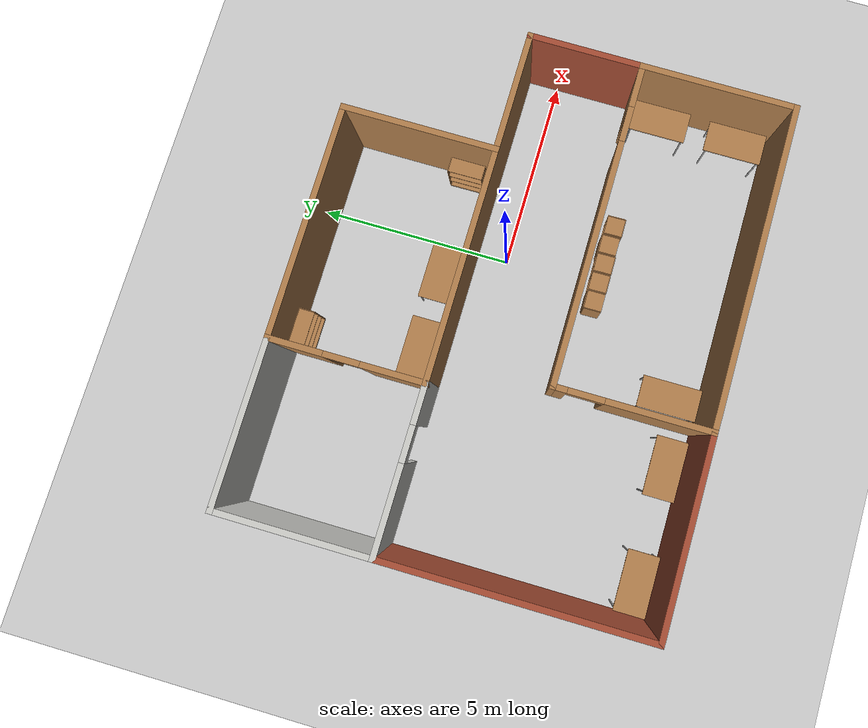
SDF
<sdf version="1.6">
 <world name="default">
  <light name="sun" type="directional">
   <pose>0 0 10 0 -0 0</pose>
   <diffuse>0.8 0.8 0.8 1</diffuse>
   <specular>0.2 0.2 0.2 1</specular>
   <attenuation>
    <range>1000</range>
    <constant>0.9</constant>
    <linear>0.01</linear>
    <quadratic>0.001</quadratic>
   </attenuation>
   <direction>-0.5 0.1 -0.9</direction>
  </light>
  <model name="ground_plane">
   <static>1</static>
   <link name="link">
    <collision name="collision">
     <geometry><plane><normal>0 0 1</normal><size>100 100</size></plane></geometry>
     <surface><friction><ode><mu>100</mu><mu2>50</mu2></ode></friction></surface>
    </collision>
    <visual name="visual">
     <cast_shadows>0</cast_shadows>
     <geometry><plane><normal>0 0 1</normal><size>100 100</size></plane></geometry>
     <material>
      <script><uri>file://media/materials/scripts/gazebo.material</uri><name>Gazebo/Grey</name></script>
     </material>
    </visual>
   </link>
  </model>
  <gravity>0 0 -9.8</gravity>
  <magnetic_field>6e-06 2.3e-05 -4.2e-05</magnetic_field>
  <atmosphere type="adiabatic"/>
  <physics name="default_physics" default="0" type="ode">
   <max_step_size>0.001</max_step_size>
   <real_time_factor>1</real_time_factor>
   <real_time_update_rate>1000</real_time_update_rate>
  </physics>
  <scene><ambient>0.4 0.4 0.4 1</ambient><background>0.7 0.7 0.7 1</background><shadows>1</shadows></scene>
  <spherical_coordinates>
   <surface_model>EARTH_WGS84</surface_model>
   <latitude_deg>0</latitude_deg>
   <longitude_deg>0</longitude_deg>
   <elevation>0</elevation>
   <heading_deg>0</heading_deg>
  </spherical_coordinates>
  <model name="office">
   <pose>-1.375 -0.575 0 0 -0 0</pose>
   <link name="Wall_0">
    <pose>2.375 -1.425 0 0 -0 0</pose>
    <visual name="Wall_0_Visual_0">
     <pose>-0.976421 0 1.25 0 -0 0</pose>
     <geometry><box><size>6.19716 0.15 2.5</size></box></geometry>
     <material>
      <script><uri>file://media/materials/scripts/gazebo.material</uri><name>Gazebo/Wood</name></script>
      <ambient>1 1 1 1</ambient>
     </material>
     <meta><layer>0</layer></meta>
    </visual>
    <collision name="Wall_0_Collision_0">
     <geometry><box><size>6.19716 0.15 2.5</size></box></geometry>
     <pose>-0.976421 0 1.25 0 -0 0</pose>
    </collision>
    <visual name="Wall_0_Visual_1">
     <pose>3.54858 0 1.25 0 -0 0</pose>
     <geometry><box><size>1.05284 0.15 2.5</size></box></geometry>
     <material>
      <script><uri>file://media/materials/scripts/gazebo.material</uri><name>Gazebo/Wood</name></script>
      <ambient>1 1 1 1</ambient>
     </material>
     <meta><layer>0</layer></meta>
    </visual>
    <collision name="Wall_0_Collision_1">
     <geometry><box><size>1.05284 0.15 2.5</size></box></geometry>
     <pose>3.54858 0 1.25 0 -0 0</pose>
    </collision>
    <visual name="Wall_0_Visual_2">
     <pose>2.57216 0 2.25 0 -0 0</pose>
     <geometry><box><size>0.9 0.15 0.5</size></box></geometry>
     <material>
      <script><uri>file://media/materials/scripts/gazebo.material</uri><name>Gazebo/Wood</name></script>
      <ambient>1 1 1 1</ambient>
     </material>
     <meta><layer>0</layer></meta>
    </visual>
    <collision name="Wall_0_Collision_2">
     <geometry><box><size>0.9 0.15 0.5</size></box></geometry>
     <pose>2.57216 0 2.25 0 -0 0</pose>
    </collision>
   </link>
   <link name="Wall_11">
    <collision name="Wall_11_Collision">
     <geometry><box><size>5 0.15 2.5</size></box></geometry>
     <pose>0 0 1.25 0 -0 0</pose>
    </collision>
    <visual name="Wall_11_Visual">
     <pose>0 0 1.25 0 -0 0</pose>
     <geometry><box><size>5 0.15 2.5</size></box></geometry>
     <material>
      <script><uri>file://media/materials/scripts/gazebo.material</uri><name>Gazebo/Bricks</name></script>
      <ambient>1 1 1 1</ambient>
     </material>
     <meta><layer>0</layer></meta>
    </visual>
    <pose>-4.05 -5.275 0 0 -0 3.14159</pose>
   </link>
   <link name="Wall_15">
    <collision name="Wall_15_Collision">
     <geometry><box><size>3 0.15 2.5</size></box></geometry>
     <pose>0 0 1.25 0 -0 0</pose>
    </collision>
    <visual name="Wall_15_Visual">
     <pose>0 0 1.25 0 -0 0</pose>
     <geometry><box><size>3 0.15 2.5</size></box></geometry>
     <material>
      <script><uri>file://media/materials/scripts/gazebo.material</uri><name>Gazebo/Bricks</name></script>
      <ambient>1 1 1 1</ambient>
     </material>
     <meta><layer>0</layer></meta>
    </visual>
    <pose>6.475 0 0 0 -0 1.5708</pose>
   </link>
   <link name="Wall_16">
    <collision name="Wall_16_Collision">
     <geometry><box><size>9 0.15 2.5</size></box></geometry>
     <pose>0 0 1.25 0 -0 0</pose>
    </collision>
    <visual name="Wall_16_Visual">
     <pose>0 0 1.25 0 -0 0</pose>
     <geometry><box><size>9 0.15 2.5</size></box></geometry>
     <material>
      <script><uri>file://media/materials/scripts/gazebo.material</uri><name>Gazebo/Wood</name></script>
      <ambient>1 1 1 1</ambient>
     </material>
     <meta><layer>0</layer></meta>
    </visual>
    <pose>2.05 1.425 0 0 -0 3.14159</pose>
   </link>
   <link name="Wall_17">
    <pose>-4.425 1.425 0 0 -0 3.14159</pose>
    <visual name="Wall_17_Visual_0">
     <pose>-1.59299 0 1.25 0 -0 0</pose>
     <geometry><box><size>1.06403 0.15 2.5</size></box></geometry>
     <material>
      <script><uri>file://media/materials/scripts/gazebo.material</uri><name>Gazebo/CeilingTiled</name></script>
      <ambient>1 1 1 1</ambient>
     </material>
     <meta><layer>0</layer></meta>
    </visual>
    <collision name="Wall_17_Collision_0">
     <geometry><box><size>1.06403 0.15 2.5</size></box></geometry>
     <pose>-1.59299 0 1.25 0 -0 0</pose>
    </collision>
    <visual name="Wall_17_Visual_1">
     <pose>0.982015 0 1.25 0 -0 0</pose>
     <geometry><box><size>2.28597 0.15 2.5</size></box></geometry>
     <material>
      <script><uri>file://media/materials/scripts/gazebo.material</uri><name>Gazebo/CeilingTiled</name></script>
      <ambient>1 1 1 1</ambient>
     </material>
     <meta><layer>0</layer></meta>
    </visual>
    <collision name="Wall_17_Collision_1">
     <geometry><box><size>2.28597 0.15 2.5</size></box></geometry>
     <pose>0.982015 0 1.25 0 -0 0</pose>
    </collision>
    <visual name="Wall_17_Visual_2">
     <pose>-0.610971 0 2.25 0 -0 0</pose>
     <geometry><box><size>0.9 0.15 0.5</size></box></geometry>
     <material>
      <script><uri>file://media/materials/scripts/gazebo.material</uri><name>Gazebo/CeilingTiled</name></script>
      <ambient>1 1 1 1</ambient>
     </material>
     <meta><layer>0</layer></meta>
    </visual>
    <collision name="Wall_17_Collision_2">
     <geometry><box><size>0.9 0.15 0.5</size></box></geometry>
     <pose>-0.610971 0 2.25 0 -0 0</pose>
    </collision>
   </link>
   <link name="Wall_18">
    <collision name="Wall_18_Collision">
     <geometry><box><size>6.85 0.15 2.5</size></box></geometry>
     <pose>0 0 1.25 0 -0 0</pose>
    </collision>
    <visual name="Wall_18_Visual">
     <pose>0 0 1.25 0 -0 0</pose>
     <geometry><box><size>6.85 0.15 2.5</size></box></geometry>
     <material>
      <script><uri>file://media/materials/scripts/gazebo.material</uri><name>Gazebo/Bricks</name></script>
      <ambient>1 1 1 1</ambient>
     </material>
     <meta><layer>0</layer></meta>
    </visual>
    <pose>-6.475 -1.925 0 0 0 -1.5708</pose>
   </link>
   <link name="Wall_21">
    <collision name="Wall_21_Collision">
     <geometry><box><size>4 0.15 2.5</size></box></geometry>
     <pose>0 0 1.25 0 -0 0</pose>
    </collision>
    <visual name="Wall_21_Visual">
     <pose>0 0 1.25 0 -0 0</pose>
     <geometry><box><size>4 0.15 2.5</size></box></geometry>
     <material>
      <script><uri>file://media/materials/scripts/gazebo.material</uri><name>Gazebo/CeilingTiled</name></script>
      <ambient>1 1 1 1</ambient>
     </material>
     <meta><layer>0</layer></meta>
    </visual>
    <pose>-6.475 3.35 0 0 -0 1.5708</pose>
   </link>
   <link name="Wall_22">
    <collision name="Wall_22_Collision">
     <geometry><box><size>4.25 0.15 2.5</size></box></geometry>
     <pose>0 0 1.25 0 -0 0</pose>
    </collision>
    <visual name="Wall_22_Visual">
     <pose>0 0 1.25 0 -0 0</pose>
     <geometry><box><size>4.25 0.15 2.5</size></box></geometry>
     <material>
      <script><uri>file://media/materials/scripts/gazebo.material</uri><name>Gazebo/CeilingTiled</name></script>
      <ambient>1 1 1 1</ambient>
     </material>
     <meta><layer>0</layer></meta>
    </visual>
    <pose>-4.425 5.275 0 0 -0 0</pose>
   </link>
   <link name="Wall_23">
    <pose>-2.375 3.35 0 0 0 -1.5708</pose>
    <visual name="Wall_23_Visual_0">
     <pose>-1.28709 0 1.25 0 -0 0</pose>
     <geometry><box><size>1.42582 0.15 2.5</size></box></geometry>
     <material>
      <script><uri>file://media/materials/scripts/gazebo.material</uri><name>Gazebo/Wood</name></script>
      <ambient>1 1 1 1</ambient>
     </material>
     <meta><layer>0</layer></meta>
    </visual>
    <collision name="Wall_23_Collision_0">
     <geometry><box><size>1.42582 0.15 2.5</size></box></geometry>
     <pose>-1.28709 0 1.25 0 -0 0</pose>
    </collision>
    <visual name="Wall_23_Visual_1">
     <pose>1.16291 0 1.25 0 -0 0</pose>
     <geometry><box><size>1.67419 0.15 2.5</size></box></geometry>
     <material>
      <script><uri>file://media/materials/scripts/gazebo.material</uri><name>Gazebo/Wood</name></script>
      <ambient>1 1 1 1</ambient>
     </material>
     <meta><layer>0</layer></meta>
    </visual>
    <collision name="Wall_23_Collision_1">
     <geometry><box><size>1.67419 0.15 2.5</size></box></geometry>
     <pose>1.16291 0 1.25 0 -0 0</pose>
    </collision>
    <visual name="Wall_23_Visual_2">
     <pose>-0.124185 0 2.25 0 -0 0</pose>
     <geometry><box><size>0.9 0.15 0.5</size></box></geometry>
     <material>
      <script><uri>file://media/materials/scripts/gazebo.material</uri><name>Gazebo/Wood</name></script>
      <ambient>1 1 1 1</ambient>
     </material>
     <meta><layer>0</layer></meta>
    </visual>
    <collision name="Wall_23_Collision_2">
     <geometry><box><size>0.9 0.15 0.5</size></box></geometry>
     <pose>-0.124185 0 2.25 0 -0 0</pose>
    </collision>
   </link>
   <link name="Wall_28">
    <collision name="Wall_28_Collision">
     <geometry><box><size>6 0.15 2.5</size></box></geometry>
     <pose>0 0 1.25 0 -0 0</pose>
    </collision>
    <visual name="Wall_28_Visual">
     <pose>0 0 1.25 0 -0 0</pose>
     <geometry><box><size>6 0.15 2.5</size></box></geometry>
     <material>
      <script><uri>file://media/materials/scripts/gazebo.material</uri><name>Gazebo/Wood</name></script>
      <ambient>1 1 1 1</ambient>
     </material>
     <meta><layer>0</layer></meta>
    </visual>
    <pose>0.55 5.275 0 0 -0 0</pose>
   </link>
   <link name="Wall_29">
    <collision name="Wall_29_Collision">
     <geometry><box><size>4 0.15 2.5</size></box></geometry>
     <pose>0 0 1.25 0 -0 0</pose>
    </collision>
    <visual name="Wall_29_Visual">
     <pose>0 0 1.25 0 -0 0</pose>
     <geometry><box><size>4 0.15 2.5</size></box></geometry>
     <material>
      <script><uri>file://media/materials/scripts/gazebo.material</uri><name>Gazebo/Wood</name></script>
      <ambient>1 1 1 1</ambient>
     </material>
     <meta><layer>0</layer></meta>
    </visual>
    <pose>3.475 3.35 0 0 0 -1.5708</pose>
   </link>
   <link name="Wall_7">
    <pose>-1.625 -3.35 0 0 0 -1.5708</pose>
    <visual name="Wall_7_Visual_0">
     <pose>-1.79102 0 1.25 0 -0 0</pose>
     <geometry><box><size>0.417956 0.15 2.5</size></box></geometry>
     <material>
      <script><uri>file://media/materials/scripts/gazebo.material</uri><name>Gazebo/Wood</name></script>
      <ambient>1 1 1 1</ambient>
     </material>
     <meta><layer>0</layer></meta>
    </visual>
    <collision name="Wall_7_Collision_0">
     <geometry><box><size>0.417956 0.15 2.5</size></box></geometry>
     <pose>-1.79102 0 1.25 0 -0 0</pose>
    </collision>
    <visual name="Wall_7_Visual_1">
     <pose>0.658978 0 1.25 0 -0 0</pose>
     <geometry><box><size>2.68204 0.15 2.5</size></box></geometry>
     <material>
      <script><uri>file://media/materials/scripts/gazebo.material</uri><name>Gazebo/Wood</name></script>
      <ambient>1 1 1 1</ambient>
     </material>
     <meta><layer>0</layer></meta>
    </visual>
    <collision name="Wall_7_Collision_1">
     <geometry><box><size>2.68204 0.15 2.5</size></box></geometry>
     <pose>0.658978 0 1.25 0 -0 0</pose>
    </collision>
    <visual name="Wall_7_Visual_2">
     <pose>-1.13204 0 2.25 0 -0 0</pose>
     <geometry><box><size>0.9 0.15 0.5</size></box></geometry>
     <material>
      <script><uri>file://media/materials/scripts/gazebo.material</uri><name>Gazebo/Wood</name></script>
      <ambient>1 1 1 1</ambient>
     </material>
     <meta><layer>0</layer></meta>
    </visual>
    <collision name="Wall_7_Collision_2">
     <geometry><box><size>0.9 0.15 0.5</size></box></geometry>
     <pose>-1.13204 0 2.25 0 -0 0</pose>
    </collision>
   </link>
   <link name="Wall_8">
    <collision name="Wall_8_Collision">
     <geometry><box><size>8.25 0.15 2.5</size></box></geometry>
     <pose>0 0 1.25 0 -0 0</pose>
    </collision>
    <visual name="Wall_8_Visual">
     <pose>0 0 1.25 0 -0 0</pose>
     <geometry><box><size>8.25 0.15 2.5</size></box></geometry>
     <material>
      <script><uri>file://media/materials/scripts/gazebo.material</uri><name>Gazebo/Wood</name></script>
      <ambient>1 1 1 1</ambient>
     </material>
     <meta><layer>0</layer></meta>
    </visual>
    <pose>2.425 -5.275 0 0 -0 0</pose>
   </link>
   <link name="Wall_9">
    <collision name="Wall_9_Collision">
     <geometry><box><size>4 0.15 2.5</size></box></geometry>
     <pose>0 0 1.25 0 -0 0</pose>
    </collision>
    <visual name="Wall_9_Visual">
     <pose>0 0 1.25 0 -0 0</pose>
     <geometry><box><size>4 0.15 2.5</size></box></geometry>
     <material>
      <script><uri>file://media/materials/scripts/gazebo.material</uri><name>Gazebo/Wood</name></script>
      <ambient>1 1 1 1</ambient>
     </material>
     <meta><layer>0</layer></meta>
    </visual>
    <pose>6.475 -3.35 0 0 -0 1.5708</pose>
   </link>
   <static>1</static>
  </model>
  <model name="bookshelf">
   <static>1</static>
   <link name="link">
    <inertial><mass>1</mass></inertial>
    <collision name="back">
     <pose>0 0.005 0.6 0 -0 0</pose>
     <geometry><box><size>0.9 0.01 1.2</size></box></geometry>
    </collision>
    <visual name="visual1">
     <pose>0 0.005 0.6 0 -0 0</pose>
     <geometry><box><size>0.9 0.01 1.2</size></box></geometry>
     <material>
      <script><uri>file://media/materials/scripts/gazebo.material</uri><name>Gazebo/Wood</name></script>
     </material>
    </visual>
    <collision name="left_side">
     <pose>0.45 -0.195 0.6 0 -0 0</pose>
     <geometry><box><size>0.02 0.4 1.2</size></box></geometry>
    </collision>
    <visual name="visual2">
     <pose>0.45 -0.195 0.6 0 -0 0</pose>
     <geometry><box><size>0.02 0.4 1.2</size></box></geometry>
     <material>
      <script><uri>file://media/materials/scripts/gazebo.material</uri><name>Gazebo/Wood</name></script>
     </material>
    </visual>
    <collision name="right_side">
     <pose>-0.45 -0.195 0.6 0 -0 0</pose>
     <geometry><box><size>0.02 0.4 1.2</size></box></geometry>
    </collision>
    <visual name="visual3">
     <pose>-0.45 -0.195 0.6 0 -0 0</pose>
     <geometry><box><size>0.02 0.4 1.2</size></box></geometry>
     <material>
      <script><uri>file://media/materials/scripts/gazebo.material</uri><name>Gazebo/Wood</name></script>
     </material>
    </visual>
    <collision name="bottom">
     <pose>0 -0.195 0.03 0 -0 0</pose>
     <geometry><box><size>0.88 0.4 0.06</size></box></geometry>
    </collision>
    <visual name="visual4">
     <pose>0 -0.195 0.03 0 -0 0</pose>
     <geometry><box><size>0.88 0.4 0.06</size></box></geometry>
     <material>
      <script><uri>file://media/materials/scripts/gazebo.material</uri><name>Gazebo/Wood</name></script>
     </material>
    </visual>
    <collision name="top">
     <pose>0 -0.195 1.19 0 -0 0</pose>
     <geometry><box><size>0.88 0.4 0.02</size></box></geometry>
    </collision>
    <visual name="visual5">
     <pose>0 -0.195 1.19 0 -0 0</pose>
     <geometry><box><size>0.88 0.4 0.02</size></box></geometry>
     <material>
      <script><uri>file://media/materials/scripts/gazebo.material</uri><name>Gazebo/Wood</name></script>
     </material>
    </visual>
    <collision name="low_shelf">
     <pose>0 -0.195 0.43 0 -0 0</pose>
     <geometry><box><size>0.88 0.4 0.02</size></box></geometry>
    </collision>
    <visual name="visual6">
     <pose>0 -0.195 0.43 0 -0 0</pose>
     <geometry><box><size>0.88 0.4 0.02</size></box></geometry>
     <material>
      <script><uri>file://media/materials/scripts/gazebo.material</uri><name>Gazebo/Wood</name></script>
     </material>
    </visual>
    <collision name="high_shelf">
     <pose>0 -0.195 0.8 0 -0 0</pose>
     <geometry><box><size>0.88 0.4 0.02</size></box></geometry>
    </collision>
    <visual name="visual7">
     <pose>0 -0.195 0.8 0 -0 0</pose>
     <geometry><box><size>0.88 0.4 0.02</size></box></geometry>
     <material>
      <script><uri>file://media/materials/scripts/gazebo.material</uri><name>Gazebo/Wood</name></script>
     </material>
    </visual>
   </link>
   <pose>-3.21662 4.56461 0 0 -0 0</pose>
  </model>
  <model name="bookshelf_0">
   <static>1</static>
   <link name="link">
    <inertial><mass>1</mass></inertial>
    <collision name="back">
     <pose>0 0.005 0.6 0 -0 0</pose>
     <geometry><box><size>0.9 0.01 1.2</size></box></geometry>
    </collision>
    <visual name="visual1">
     <pose>0 0.005 0.6 0 -0 0</pose>
     <geometry><box><size>0.9 0.01 1.2</size></box></geometry>
     <material>
      <script><uri>file://media/materials/scripts/gazebo.material</uri><name>Gazebo/Wood</name></script>
     </material>
    </visual>
    <collision name="left_side">
     <pose>0.45 -0.195 0.6 0 -0 0</pose>
     <geometry><box><size>0.02 0.4 1.2</size></box></geometry>
    </collision>
    <visual name="visual2">
     <pose>0.45 -0.195 0.6 0 -0 0</pose>
     <geometry><box><size>0.02 0.4 1.2</size></box></geometry>
     <material>
      <script><uri>file://media/materials/scripts/gazebo.material</uri><name>Gazebo/Wood</name></script>
     </material>
    </visual>
    <collision name="right_side">
     <pose>-0.45 -0.195 0.6 0 -0 0</pose>
     <geometry><box><size>0.02 0.4 1.2</size></box></geometry>
    </collision>
    <visual name="visual3">
     <pose>-0.45 -0.195 0.6 0 -0 0</pose>
     <geometry><box><size>0.02 0.4 1.2</size></box></geometry>
     <material>
      <script><uri>file://media/materials/scripts/gazebo.material</uri><name>Gazebo/Wood</name></script>
     </material>
    </visual>
    <collision name="bottom">
     <pose>0 -0.195 0.03 0 -0 0</pose>
     <geometry><box><size>0.88 0.4 0.06</size></box></geometry>
    </collision>
    <visual name="visual4">
     <pose>0 -0.195 0.03 0 -0 0</pose>
     <geometry><box><size>0.88 0.4 0.06</size></box></geometry>
     <material>
      <script><uri>file://media/materials/scripts/gazebo.material</uri><name>Gazebo/Wood</name></script>
     </material>
    </visual>
    <collision name="top">
     <pose>0 -0.195 1.19 0 -0 0</pose>
     <geometry><box><size>0.88 0.4 0.02</size></box></geometry>
    </collision>
    <visual name="visual5">
     <pose>0 -0.195 1.19 0 -0 0</pose>
     <geometry><box><size>0.88 0.4 0.02</size></box></geometry>
     <material>
      <script><uri>file://media/materials/scripts/gazebo.material</uri><name>Gazebo/Wood</name></script>
     </material>
    </visual>
    <collision name="low_shelf">
     <pose>0 -0.195 0.43 0 -0 0</pose>
     <geometry><box><size>0.88 0.4 0.02</size></box></geometry>
    </collision>
    <visual name="visual6">
     <pose>0 -0.195 0.43 0 -0 0</pose>
     <geometry><box><size>0.88 0.4 0.02</size></box></geometry>
     <material>
      <script><uri>file://media/materials/scripts/gazebo.material</uri><name>Gazebo/Wood</name></script>
     </material>
    </visual>
    <collision name="high_shelf">
     <pose>0 -0.195 0.8 0 -0 0</pose>
     <geometry><box><size>0.88 0.4 0.02</size></box></geometry>
    </collision>
    <visual name="visual7">
     <pose>0 -0.195 0.8 0 -0 0</pose>
     <geometry><box><size>0.88 0.4 0.02</size></box></geometry>
     <material>
      <script><uri>file://media/materials/scripts/gazebo.material</uri><name>Gazebo/Wood</name></script>
     </material>
    </visual>
   </link>
   <pose>2.03951 1.58631 0 0 0 -1.56121</pose>
  </model>
  <model name="cabinet">
   <static>1</static>
   <link name="cabinet_bottom_plate">
    <inertial>
     <pose>0 0 -1 0 -0 0</pose>
     <inertia><ixx>2.05</ixx><ixy>0</ixy><ixz>0</ixz><iyy>2.05</iyy><iyz>0</iyz><izz>2.05</izz></inertia>
     <mass>25</mass>
    </inertial>
    <collision name="cabinet_bottom_plate_geom">
     <pose>0 0 0.01 0 -0 0</pose>
     <geometry><box><size>0.45 0.45 0.02</size></box></geometry>
    </collision>
    <visual name="cabinet_bottom_plate_geom_visual">
     <pose>0 0 0.01 0 -0 0</pose>
     <geometry><box><size>0.45 0.45 0.02</size></box></geometry>
     <material>
      <script><uri>file://media/materials/scripts/gazebo.material</uri><name>Gazebo/Wood</name></script>
     </material>
    </visual>
    <collision name="cabinet_bottom_plate_geom_cabinet_back_plate">
     <pose>0.235 0 0.51 0 -0 0</pose>
     <geometry><box><size>0.02 0.45 1.02</size></box></geometry>
    </collision>
    <visual name="cabinet_bottom_plate_geom_cabinet_back_plate_visual">
     <pose>0.235 0 0.51 0 -0 0</pose>
     <geometry><box><size>0.02 0.45 1.02</size></box></geometry>
     <material>
      <script><uri>file://media/materials/scripts/gazebo.material</uri><name>Gazebo/Wood</name></script>
     </material>
    </visual>
    <collision name="cabinet_bottom_plate_geom_cabinet_left_plate">
     <pose>0 0.235 0.51 0 -0 0</pose>
     <geometry><box><size>0.45 0.02 1.02</size></box></geometry>
    </collision>
    <visual name="cabinet_bottom_plate_geom_cabinet_left_plate_visual">
     <pose>0 0.235 0.51 0 -0 0</pose>
     <geometry><box><size>0.45 0.02 1.02</size></box></geometry>
     <material>
      <script><uri>file://media/materials/scripts/gazebo.material</uri><name>Gazebo/Wood</name></script>
     </material>
    </visual>
    <collision name="cabinet_bottom_plate_geom_cabinet_middle_plate">
     <pose>0 0 0.51 0 -0 0</pose>
     <geometry><box><size>0.45 0.45 0.02</size></box></geometry>
    </collision>
    <visual name="cabinet_bottom_plate_geom_cabinet_middle_plate_visual">
     <pose>0 0 0.51 0 -0 0</pose>
     <geometry><box><size>0.45 0.45 0.02</size></box></geometry>
     <material>
      <script><uri>file://media/materials/scripts/gazebo.material</uri><name>Gazebo/Wood</name></script>
     </material>
    </visual>
    <collision name="cabinet_bottom_plate_geom_cabinet_right_plate">
     <pose>0 -0.235 0.51 0 -0 0</pose>
     <geometry><box><size>0.45 0.02 1.02</size></box></geometry>
    </collision>
    <visual name="cabinet_bottom_plate_geom_cabinet_right_plate_visual">
     <pose>0 -0.235 0.51 0 -0 0</pose>
     <geometry><box><size>0.45 0.02 1.02</size></box></geometry>
     <material>
      <script><uri>file://media/materials/scripts/gazebo.material</uri><name>Gazebo/Wood</name></script>
     </material>
    </visual>
    <collision name="cabinet_bottom_plate_geom_cabinet_top_plate">
     <pose>0 0 1.01 0 -0 0</pose>
     <geometry><box><size>0.45 0.45 0.02</size></box></geometry>
    </collision>
    <visual name="cabinet_bottom_plate_geom_cabinet_top_plate_visual">
     <pose>0 0 1.01 0 -0 0</pose>
     <geometry><box><size>0.45 0.45 0.02</size></box></geometry>
     <material>
      <script><uri>file://media/materials/scripts/gazebo.material</uri><name>Gazebo/Wood</name></script>
     </material>
    </visual>
   </link>
   <pose>-0.531154 -2.47024 0 0 -0 1.584</pose>
  </model>
  <model name="cabinet_clone">
   <static>1</static>
   <link name="cabinet_bottom_plate">
    <inertial>
     <pose>0 0 -1 0 -0 0</pose>
     <inertia><ixx>2.05</ixx><ixy>0</ixy><ixz>0</ixz><iyy>2.05</iyy><iyz>0</iyz><izz>2.05</izz></inertia>
     <mass>25</mass>
    </inertial>
    <collision name="cabinet_bottom_plate_geom">
     <pose>0 0 0.01 0 -0 0</pose>
     <geometry><box><size>0.45 0.45 0.02</size></box></geometry>
    </collision>
    <visual name="cabinet_bottom_plate_geom_visual">
     <pose>0 0 0.01 0 -0 0</pose>
     <geometry><box><size>0.45 0.45 0.02</size></box></geometry>
     <material>
      <script><uri>file://media/materials/scripts/gazebo.material</uri><name>Gazebo/Wood</name></script>
     </material>
    </visual>
    <collision name="cabinet_bottom_plate_geom_cabinet_back_plate">
     <pose>0.235 0 0.51 0 -0 0</pose>
     <geometry><box><size>0.02 0.45 1.02</size></box></geometry>
    </collision>
    <visual name="cabinet_bottom_plate_geom_cabinet_back_plate_visual">
     <pose>0.235 0 0.51 0 -0 0</pose>
     <geometry><box><size>0.02 0.45 1.02</size></box></geometry>
     <material>
      <script><uri>file://media/materials/scripts/gazebo.material</uri><name>Gazebo/Wood</name></script>
     </material>
    </visual>
    <collision name="cabinet_bottom_plate_geom_cabinet_left_plate">
     <pose>0 0.235 0.51 0 -0 0</pose>
     <geometry><box><size>0.45 0.02 1.02</size></box></geometry>
    </collision>
    <visual name="cabinet_bottom_plate_geom_cabinet_left_plate_visual">
     <pose>0 0.235 0.51 0 -0 0</pose>
     <geometry><box><size>0.45 0.02 1.02</size></box></geometry>
     <material>
      <script><uri>file://media/materials/scripts/gazebo.material</uri><name>Gazebo/Wood</name></script>
     </material>
    </visual>
    <collision name="cabinet_bottom_plate_geom_cabinet_middle_plate">
     <pose>0 0 0.51 0 -0 0</pose>
     <geometry><box><size>0.45 0.45 0.02</size></box></geometry>
    </collision>
    <visual name="cabinet_bottom_plate_geom_cabinet_middle_plate_visual">
     <pose>0 0 0.51 0 -0 0</pose>
     <geometry><box><size>0.45 0.45 0.02</size></box></geometry>
     <material>
      <script><uri>file://media/materials/scripts/gazebo.material</uri><name>Gazebo/Wood</name></script>
     </material>
    </visual>
    <collision name="cabinet_bottom_plate_geom_cabinet_right_plate">
     <pose>0 -0.235 0.51 0 -0 0</pose>
     <geometry><box><size>0.45 0.02 1.02</size></box></geometry>
    </collision>
    <visual name="cabinet_bottom_plate_geom_cabinet_right_plate_visual">
     <pose>0 -0.235 0.51 0 -0 0</pose>
     <geometry><box><size>0.45 0.02 1.02</size></box></geometry>
     <material>
      <script><uri>file://media/materials/scripts/gazebo.material</uri><name>Gazebo/Wood</name></script>
     </material>
    </visual>
    <collision name="cabinet_bottom_plate_geom_cabinet_top_plate">
     <pose>0 0 1.01 0 -0 0</pose>
     <geometry><box><size>0.45 0.45 0.02</size></box></geometry>
    </collision>
    <visual name="cabinet_bottom_plate_geom_cabinet_top_plate_visual">
     <pose>0 0 1.01 0 -0 0</pose>
     <geometry><box><size>0.45 0.45 0.02</size></box></geometry>
     <material>
      <script><uri>file://media/materials/scripts/gazebo.material</uri><name>Gazebo/Wood</name></script>
     </material>
    </visual>
   </link>
   <pose>0.958869 -2.44783 0 0 -0 1.584</pose>
  </model>
  <model name="cabinet_clone_0">
   <static>1</static>
   <link name="cabinet_bottom_plate">
    <inertial>
     <pose>0 0 -1 0 -0 0</pose>
     <inertia><ixx>2.05</ixx><ixy>0</ixy><ixz>0</ixz><iyy>2.05</iyy><iyz>0</iyz><izz>2.05</izz></inertia>
     <mass>25</mass>
    </inertial>
    <collision name="cabinet_bottom_plate_geom">
     <pose>0 0 0.01 0 -0 0</pose>
     <geometry><box><size>0.45 0.45 0.02</size></box></geometry>
    </collision>
    <visual name="cabinet_bottom_plate_geom_visual">
     <pose>0 0 0.01 0 -0 0</pose>
     <geometry><box><size>0.45 0.45 0.02</size></box></geometry>
     <material>
      <script><uri>file://media/materials/scripts/gazebo.material</uri><name>Gazebo/Wood</name></script>
     </material>
    </visual>
    <collision name="cabinet_bottom_plate_geom_cabinet_back_plate">
     <pose>0.235 0 0.51 0 -0 0</pose>
     <geometry><box><size>0.02 0.45 1.02</size></box></geometry>
    </collision>
    <visual name="cabinet_bottom_plate_geom_cabinet_back_plate_visual">
     <pose>0.235 0 0.51 0 -0 0</pose>
     <geometry><box><size>0.02 0.45 1.02</size></box></geometry>
     <material>
      <script><uri>file://media/materials/scripts/gazebo.material</uri><name>Gazebo/Wood</name></script>
     </material>
    </visual>
    <collision name="cabinet_bottom_plate_geom_cabinet_left_plate">
     <pose>0 0.235 0.51 0 -0 0</pose>
     <geometry><box><size>0.45 0.02 1.02</size></box></geometry>
    </collision>
    <visual name="cabinet_bottom_plate_geom_cabinet_left_plate_visual">
     <pose>0 0.235 0.51 0 -0 0</pose>
     <geometry><box><size>0.45 0.02 1.02</size></box></geometry>
     <material>
      <script><uri>file://media/materials/scripts/gazebo.material</uri><name>Gazebo/Wood</name></script>
     </material>
    </visual>
    <collision name="cabinet_bottom_plate_geom_cabinet_middle_plate">
     <pose>0 0 0.51 0 -0 0</pose>
     <geometry><box><size>0.45 0.45 0.02</size></box></geometry>
    </collision>
    <visual name="cabinet_bottom_plate_geom_cabinet_middle_plate_visual">
     <pose>0 0 0.51 0 -0 0</pose>
     <geometry><box><size>0.45 0.45 0.02</size></box></geometry>
     <material>
      <script><uri>file://media/materials/scripts/gazebo.material</uri><name>Gazebo/Wood</name></script>
     </material>
    </visual>
    <collision name="cabinet_bottom_plate_geom_cabinet_right_plate">
     <pose>0 -0.235 0.51 0 -0 0</pose>
     <geometry><box><size>0.45 0.02 1.02</size></box></geometry>
    </collision>
    <visual name="cabinet_bottom_plate_geom_cabinet_right_plate_visual">
     <pose>0 -0.235 0.51 0 -0 0</pose>
     <geometry><box><size>0.45 0.02 1.02</size></box></geometry>
     <material>
      <script><uri>file://media/materials/scripts/gazebo.material</uri><name>Gazebo/Wood</name></script>
     </material>
    </visual>
    <collision name="cabinet_bottom_plate_geom_cabinet_top_plate">
     <pose>0 0 1.01 0 -0 0</pose>
     <geometry><box><size>0.45 0.45 0.02</size></box></geometry>
    </collision>
    <visual name="cabinet_bottom_plate_geom_cabinet_top_plate_visual">
     <pose>0 0 1.01 0 -0 0</pose>
     <geometry><box><size>0.45 0.45 0.02</size></box></geometry>
     <material>
      <script><uri>file://media/materials/scripts/gazebo.material</uri><name>Gazebo/Wood</name></script>
     </material>
    </visual>
   </link>
   <pose>0.459042 -2.45144 0 0 0 -1.55178</pose>
  </model>
  <model name="cabinet_clone_0_clone">
   <static>1</static>
   <link name="cabinet_bottom_plate">
    <inertial>
     <pose>0 0 -1 0 -0 0</pose>
     <inertia><ixx>2.05</ixx><ixy>0</ixy><ixz>0</ixz><iyy>2.05</iyy><iyz>0</iyz><izz>2.05</izz></inertia>
     <mass>25</mass>
    </inertial>
    <collision name="cabinet_bottom_plate_geom">
     <pose>0 0 0.01 0 -0 0</pose>
     <geometry><box><size>0.45 0.45 0.02</size></box></geometry>
    </collision>
    <visual name="cabinet_bottom_plate_geom_visual">
     <pose>0 0 0.01 0 -0 0</pose>
     <geometry><box><size>0.45 0.45 0.02</size></box></geometry>
     <material>
      <script><uri>file://media/materials/scripts/gazebo.material</uri><name>Gazebo/Wood</name></script>
     </material>
    </visual>
    <collision name="cabinet_bottom_plate_geom_cabinet_back_plate">
     <pose>0.235 0 0.51 0 -0 0</pose>
     <geometry><box><size>0.02 0.45 1.02</size></box></geometry>
    </collision>
    <visual name="cabinet_bottom_plate_geom_cabinet_back_plate_visual">
     <pose>0.235 0 0.51 0 -0 0</pose>
     <geometry><box><size>0.02 0.45 1.02</size></box></geometry>
     <material>
      <script><uri>file://media/materials/scripts/gazebo.material</uri><name>Gazebo/Wood</name></script>
     </material>
    </visual>
    <collision name="cabinet_bottom_plate_geom_cabinet_left_plate">
     <pose>0 0.235 0.51 0 -0 0</pose>
     <geometry><box><size>0.45 0.02 1.02</size></box></geometry>
    </collision>
    <visual name="cabinet_bottom_plate_geom_cabinet_left_plate_visual">
     <pose>0 0.235 0.51 0 -0 0</pose>
     <geometry><box><size>0.45 0.02 1.02</size></box></geometry>
     <material>
      <script><uri>file://media/materials/scripts/gazebo.material</uri><name>Gazebo/Wood</name></script>
     </material>
    </visual>
    <collision name="cabinet_bottom_plate_geom_cabinet_middle_plate">
     <pose>0 0 0.51 0 -0 0</pose>
     <geometry><box><size>0.45 0.45 0.02</size></box></geometry>
    </collision>
    <visual name="cabinet_bottom_plate_geom_cabinet_middle_plate_visual">
     <pose>0 0 0.51 0 -0 0</pose>
     <geometry><box><size>0.45 0.45 0.02</size></box></geometry>
     <material>
      <script><uri>file://media/materials/scripts/gazebo.material</uri><name>Gazebo/Wood</name></script>
     </material>
    </visual>
    <collision name="cabinet_bottom_plate_geom_cabinet_right_plate">
     <pose>0 -0.235 0.51 0 -0 0</pose>
     <geometry><box><size>0.45 0.02 1.02</size></box></geometry>
    </collision>
    <visual name="cabinet_bottom_plate_geom_cabinet_right_plate_visual">
     <pose>0 -0.235 0.51 0 -0 0</pose>
     <geometry><box><size>0.45 0.02 1.02</size></box></geometry>
     <material>
      <script><uri>file://media/materials/scripts/gazebo.material</uri><name>Gazebo/Wood</name></script>
     </material>
    </visual>
    <collision name="cabinet_bottom_plate_geom_cabinet_top_plate">
     <pose>0 0 1.01 0 -0 0</pose>
     <geometry><box><size>0.45 0.45 0.02</size></box></geometry>
    </collision>
    <visual name="cabinet_bottom_plate_geom_cabinet_top_plate_visual">
     <pose>0 0 1.01 0 -0 0</pose>
     <geometry><box><size>0.45 0.45 0.02</size></box></geometry>
     <material>
      <script><uri>file://media/materials/scripts/gazebo.material</uri><name>Gazebo/Wood</name></script>
     </material>
    </visual>
   </link>
   <pose>1.4683 -2.45568 0 0 0 -1.55178</pose>
  </model>
  <model name="cabinet_clone_0_clone_0">
   <static>1</static>
   <link name="cabinet_bottom_plate">
    <inertial>
     <pose>0 0 -1 0 -0 0</pose>
     <inertia><ixx>2.05</ixx><ixy>0</ixy><ixz>0</ixz><iyy>2.05</iyy><iyz>0</iyz><izz>2.05</izz></inertia>
     <mass>25</mass>
    </inertial>
    <collision name="cabinet_bottom_plate_geom">
     <pose>0 0 0.01 0 -0 0</pose>
     <geometry><box><size>0.45 0.45 0.02</size></box></geometry>
    </collision>
    <visual name="cabinet_bottom_plate_geom_visual">
     <pose>0 0 0.01 0 -0 0</pose>
     <geometry><box><size>0.45 0.45 0.02</size></box></geometry>
     <material>
      <script><uri>file://media/materials/scripts/gazebo.material</uri><name>Gazebo/Wood</name></script>
     </material>
    </visual>
    <collision name="cabinet_bottom_plate_geom_cabinet_back_plate">
     <pose>0.235 0 0.51 0 -0 0</pose>
     <geometry><box><size>0.02 0.45 1.02</size></box></geometry>
    </collision>
    <visual name="cabinet_bottom_plate_geom_cabinet_back_plate_visual">
     <pose>0.235 0 0.51 0 -0 0</pose>
     <geometry><box><size>0.02 0.45 1.02</size></box></geometry>
     <material>
      <script><uri>file://media/materials/scripts/gazebo.material</uri><name>Gazebo/Wood</name></script>
     </material>
    </visual>
    <collision name="cabinet_bottom_plate_geom_cabinet_left_plate">
     <pose>0 0.235 0.51 0 -0 0</pose>
     <geometry><box><size>0.45 0.02 1.02</size></box></geometry>
    </collision>
    <visual name="cabinet_bottom_plate_geom_cabinet_left_plate_visual">
     <pose>0 0.235 0.51 0 -0 0</pose>
     <geometry><box><size>0.45 0.02 1.02</size></box></geometry>
     <material>
      <script><uri>file://media/materials/scripts/gazebo.material</uri><name>Gazebo/Wood</name></script>
     </material>
    </visual>
    <collision name="cabinet_bottom_plate_geom_cabinet_middle_plate">
     <pose>0 0 0.51 0 -0 0</pose>
     <geometry><box><size>0.45 0.45 0.02</size></box></geometry>
    </collision>
    <visual name="cabinet_bottom_plate_geom_cabinet_middle_plate_visual">
     <pose>0 0 0.51 0 -0 0</pose>
     <geometry><box><size>0.45 0.45 0.02</size></box></geometry>
     <material>
      <script><uri>file://media/materials/scripts/gazebo.material</uri><name>Gazebo/Wood</name></script>
     </material>
    </visual>
    <collision name="cabinet_bottom_plate_geom_cabinet_right_plate">
     <pose>0 -0.235 0.51 0 -0 0</pose>
     <geometry><box><size>0.45 0.02 1.02</size></box></geometry>
    </collision>
    <visual name="cabinet_bottom_plate_geom_cabinet_right_plate_visual">
     <pose>0 -0.235 0.51 0 -0 0</pose>
     <geometry><box><size>0.45 0.02 1.02</size></box></geometry>
     <material>
      <script><uri>file://media/materials/scripts/gazebo.material</uri><name>Gazebo/Wood</name></script>
     </material>
    </visual>
    <collision name="cabinet_bottom_plate_geom_cabinet_top_plate">
     <pose>0 0 1.01 0 -0 0</pose>
     <geometry><box><size>0.45 0.45 0.02</size></box></geometry>
    </collision>
    <visual name="cabinet_bottom_plate_geom_cabinet_top_plate_visual">
     <pose>0 0 1.01 0 -0 0</pose>
     <geometry><box><size>0.45 0.45 0.02</size></box></geometry>
     <material>
      <script><uri>file://media/materials/scripts/gazebo.material</uri><name>Gazebo/Wood</name></script>
     </material>
    </visual>
   </link>
   <pose>-0.040829 -2.45515 0 0 0 -1.55178</pose>
  </model>
  <model name="table">
   <static>1</static>
   <link name="link">
    <collision name="surface">
     <pose>0 0 1 0 -0 0</pose>
     <geometry><box><size>1.5 0.8 0.03</size></box></geometry>
     <surface><friction><ode><mu>0.6</mu><mu2>0.6</mu2></ode></friction></surface>
    </collision>
    <visual name="visual1">
     <pose>0 0 1 0 -0 0</pose>
     <geometry><box><size>1.5 0.8 0.03</size></box></geometry>
     <material>
      <script><uri>file://media/materials/scripts/gazebo.material</uri><name>Gazebo/Wood</name></script>
     </material>
    </visual>
    <collision name="front_left_leg">
     <pose>0.68 0.38 0.5 0 -0 0</pose>
     <geometry><cylinder><radius>0.02</radius><length>1</length></cylinder></geometry>
    </collision>
    <visual name="front_left_leg">
     <pose>0.68 0.38 0.5 0 -0 0</pose>
     <geometry><cylinder><radius>0.02</radius><length>1</length></cylinder></geometry>
     <material>
      <script><uri>file://media/materials/scripts/gazebo.material</uri><name>Gazebo/Grey</name></script>
     </material>
    </visual>
    <collision name="front_right_leg">
     <pose>0.68 -0.38 0.5 0 -0 0</pose>
     <geometry><cylinder><radius>0.02</radius><length>1</length></cylinder></geometry>
    </collision>
    <visual name="front_right_leg">
     <pose>0.68 -0.38 0.5 0 -0 0</pose>
     <geometry><cylinder><radius>0.02</radius><length>1</length></cylinder></geometry>
     <material>
      <script><uri>file://media/materials/scripts/gazebo.material</uri><name>Gazebo/Grey</name></script>
     </material>
    </visual>
    <collision name="back_right_leg">
     <pose>-0.68 -0.38 0.5 0 -0 0</pose>
     <geometry><cylinder><radius>0.02</radius><length>1</length></cylinder></geometry>
    </collision>
    <visual name="back_right_leg">
     <pose>-0.68 -0.38 0.5 0 -0 0</pose>
     <geometry><cylinder><radius>0.02</radius><length>1</length></cylinder></geometry>
     <material>
      <script><uri>file://media/materials/scripts/gazebo.material</uri><name>Gazebo/Grey</name></script>
     </material>
    </visual>
    <collision name="back_left_leg">
     <pose>-0.68 0.38 0.5 0 -0 0</pose>
     <geometry><cylinder><radius>0.02</radius><length>1</length></cylinder></geometry>
    </collision>
    <visual name="back_left_leg">
     <pose>-0.68 0.38 0.5 0 -0 0</pose>
     <geometry><cylinder><radius>0.02</radius><length>1</length></cylinder></geometry>
     <material>
      <script><uri>file://media/materials/scripts/gazebo.material</uri><name>Gazebo/Grey</name></script>
     </material>
    </visual>
   </link>
   <pose>-4.07405 -5.23863 0 0 -0 0</pose>
  </model>
  <model name="table_clone">
   <static>1</static>
   <link name="link">
    <collision name="surface">
     <pose>0 0 1 0 -0 0</pose>
     <geometry><box><size>1.5 0.8 0.03</size></box></geometry>
     <surface><friction><ode><mu>0.6</mu><mu2>0.6</mu2></ode></friction></surface>
    </collision>
    <visual name="visual1">
     <pose>0 0 1 0 -0 0</pose>
     <geometry><box><size>1.5 0.8 0.03</size></box></geometry>
     <material>
      <script><uri>file://media/materials/scripts/gazebo.material</uri><name>Gazebo/Wood</name></script>
     </material>
    </visual>
    <collision name="front_left_leg">
     <pose>0.68 0.38 0.5 0 -0 0</pose>
     <geometry><cylinder><radius>0.02</radius><length>1</length></cylinder></geometry>
    </collision>
    <visual name="front_left_leg">
     <pose>0.68 0.38 0.5 0 -0 0</pose>
     <geometry><cylinder><radius>0.02</radius><length>1</length></cylinder></geometry>
     <material>
      <script><uri>file://media/materials/scripts/gazebo.material</uri><name>Gazebo/Grey</name></script>
     </material>
    </visual>
    <collision name="front_right_leg">
     <pose>0.68 -0.38 0.5 0 -0 0</pose>
     <geometry><cylinder><radius>0.02</radius><length>1</length></cylinder></geometry>
    </collision>
    <visual name="front_right_leg">
     <pose>0.68 -0.38 0.5 0 -0 0</pose>
     <geometry><cylinder><radius>0.02</radius><length>1</length></cylinder></geometry>
     <material>
      <script><uri>file://media/materials/scripts/gazebo.material</uri><name>Gazebo/Grey</name></script>
     </material>
    </visual>
    <collision name="back_right_leg">
     <pose>-0.68 -0.38 0.5 0 -0 0</pose>
     <geometry><cylinder><radius>0.02</radius><length>1</length></cylinder></geometry>
    </collision>
    <visual name="back_right_leg">
     <pose>-0.68 -0.38 0.5 0 -0 0</pose>
     <geometry><cylinder><radius>0.02</radius><length>1</length></cylinder></geometry>
     <material>
      <script><uri>file://media/materials/scripts/gazebo.material</uri><name>Gazebo/Grey</name></script>
     </material>
    </visual>
    <collision name="back_left_leg">
     <pose>-0.68 0.38 0.5 0 -0 0</pose>
     <geometry><cylinder><radius>0.02</radius><length>1</length></cylinder></geometry>
    </collision>
    <visual name="back_left_leg">
     <pose>-0.68 0.38 0.5 0 -0 0</pose>
     <geometry><cylinder><radius>0.02</radius><length>1</length></cylinder></geometry>
     <material>
      <script><uri>file://media/materials/scripts/gazebo.material</uri><name>Gazebo/Grey</name></script>
     </material>
    </visual>
   </link>
   <pose>-6.90705 -5.25655 0 0 -0 0</pose>
  </model>
  <model name="table_clone_0">
   <static>1</static>
   <link name="link">
    <collision name="surface">
     <pose>0 0 1 0 -0 0</pose>
     <geometry><box><size>1.5 0.8 0.03</size></box></geometry>
     <surface><friction><ode><mu>0.6</mu><mu2>0.6</mu2></ode></friction></surface>
    </collision>
    <visual name="visual1">
     <pose>0 0 1 0 -0 0</pose>
     <geometry><box><size>1.5 0.8 0.03</size></box></geometry>
     <material>
      <script><uri>file://media/materials/scripts/gazebo.material</uri><name>Gazebo/Wood</name></script>
     </material>
    </visual>
    <collision name="front_left_leg">
     <pose>0.68 0.38 0.5 0 -0 0</pose>
     <geometry><cylinder><radius>0.02</radius><length>1</length></cylinder></geometry>
    </collision>
    <visual name="front_left_leg">
     <pose>0.68 0.38 0.5 0 -0 0</pose>
     <geometry><cylinder><radius>0.02</radius><length>1</length></cylinder></geometry>
     <material>
      <script><uri>file://media/materials/scripts/gazebo.material</uri><name>Gazebo/Grey</name></script>
     </material>
    </visual>
    <collision name="front_right_leg">
     <pose>0.68 -0.38 0.5 0 -0 0</pose>
     <geometry><cylinder><radius>0.02</radius><length>1</length></cylinder></geometry>
    </collision>
    <visual name="front_right_leg">
     <pose>0.68 -0.38 0.5 0 -0 0</pose>
     <geometry><cylinder><radius>0.02</radius><length>1</length></cylinder></geometry>
     <material>
      <script><uri>file://media/materials/scripts/gazebo.material</uri><name>Gazebo/Grey</name></script>
     </material>
    </visual>
    <collision name="back_right_leg">
     <pose>-0.68 -0.38 0.5 0 -0 0</pose>
     <geometry><cylinder><radius>0.02</radius><length>1</length></cylinder></geometry>
    </collision>
    <visual name="back_right_leg">
     <pose>-0.68 -0.38 0.5 0 -0 0</pose>
     <geometry><cylinder><radius>0.02</radius><length>1</length></cylinder></geometry>
     <material>
      <script><uri>file://media/materials/scripts/gazebo.material</uri><name>Gazebo/Grey</name></script>
     </material>
    </visual>
    <collision name="back_left_leg">
     <pose>-0.68 0.38 0.5 0 -0 0</pose>
     <geometry><cylinder><radius>0.02</radius><length>1</length></cylinder></geometry>
    </collision>
    <visual name="back_left_leg">
     <pose>-0.68 0.38 0.5 0 -0 0</pose>
     <geometry><cylinder><radius>0.02</radius><length>1</length></cylinder></geometry>
     <material>
      <script><uri>file://media/materials/scripts/gazebo.material</uri><name>Gazebo/Grey</name></script>
     </material>
    </visual>
   </link>
   <pose>4.49954 -2.83677 0 0 0 -1.56682</pose>
  </model>
  <model name="table_clone_0_clone">
   <static>1</static>
   <link name="link">
    <collision name="surface">
     <pose>0 0 1 0 -0 0</pose>
     <geometry><box><size>1.5 0.8 0.03</size></box></geometry>
     <surface><friction><ode><mu>0.6</mu><mu2>0.6</mu2></ode></friction></surface>
    </collision>
    <visual name="visual1">
     <pose>0 0 1 0 -0 0</pose>
     <geometry><box><size>1.5 0.8 0.03</size></box></geometry>
     <material>
      <script><uri>file://media/materials/scripts/gazebo.material</uri><name>Gazebo/Wood</name></script>
     </material>
    </visual>
    <collision name="front_left_leg">
     <pose>0.68 0.38 0.5 0 -0 0</pose>
     <geometry><cylinder><radius>0.02</radius><length>1</length></cylinder></geometry>
    </collision>
    <visual name="front_left_leg">
     <pose>0.68 0.38 0.5 0 -0 0</pose>
     <geometry><cylinder><radius>0.02</radius><length>1</length></cylinder></geometry>
     <material>
      <script><uri>file://media/materials/scripts/gazebo.material</uri><name>Gazebo/Grey</name></script>
     </material>
    </visual>
    <collision name="front_right_leg">
     <pose>0.68 -0.38 0.5 0 -0 0</pose>
     <geometry><cylinder><radius>0.02</radius><length>1</length></cylinder></geometry>
    </collision>
    <visual name="front_right_leg">
     <pose>0.68 -0.38 0.5 0 -0 0</pose>
     <geometry><cylinder><radius>0.02</radius><length>1</length></cylinder></geometry>
     <material>
      <script><uri>file://media/materials/scripts/gazebo.material</uri><name>Gazebo/Grey</name></script>
     </material>
    </visual>
    <collision name="back_right_leg">
     <pose>-0.68 -0.38 0.5 0 -0 0</pose>
     <geometry><cylinder><radius>0.02</radius><length>1</length></cylinder></geometry>
    </collision>
    <visual name="back_right_leg">
     <pose>-0.68 -0.38 0.5 0 -0 0</pose>
     <geometry><cylinder><radius>0.02</radius><length>1</length></cylinder></geometry>
     <material>
      <script><uri>file://media/materials/scripts/gazebo.material</uri><name>Gazebo/Grey</name></script>
     </material>
    </visual>
    <collision name="back_left_leg">
     <pose>-0.68 0.38 0.5 0 -0 0</pose>
     <geometry><cylinder><radius>0.02</radius><length>1</length></cylinder></geometry>
    </collision>
    <visual name="back_left_leg">
     <pose>-0.68 0.38 0.5 0 -0 0</pose>
     <geometry><cylinder><radius>0.02</radius><length>1</length></cylinder></geometry>
     <material>
      <script><uri>file://media/materials/scripts/gazebo.material</uri><name>Gazebo/Grey</name></script>
     </material>
    </visual>
   </link>
   <pose>4.46577 -4.86488 0 0 0 -1.56682</pose>
  </model>
  <model name="table_clone_1">
   <static>1</static>
   <link name="link">
    <collision name="surface">
     <pose>0 0 1 0 -0 0</pose>
     <geometry><box><size>1.5 0.8 0.03</size></box></geometry>
     <surface><friction><ode><mu>0.6</mu><mu2>0.6</mu2></ode></friction></surface>
    </collision>
    <visual name="visual1">
     <pose>0 0 1 0 -0 0</pose>
     <geometry><box><size>1.5 0.8 0.03</size></box></geometry>
     <material>
      <script><uri>file://media/materials/scripts/gazebo.material</uri><name>Gazebo/Wood</name></script>
     </material>
    </visual>
    <collision name="front_left_leg">
     <pose>0.68 0.38 0.5 0 -0 0</pose>
     <geometry><cylinder><radius>0.02</radius><length>1</length></cylinder></geometry>
    </collision>
    <visual name="front_left_leg">
     <pose>0.68 0.38 0.5 0 -0 0</pose>
     <geometry><cylinder><radius>0.02</radius><length>1</length></cylinder></geometry>
     <material>
      <script><uri>file://media/materials/scripts/gazebo.material</uri><name>Gazebo/Grey</name></script>
     </material>
    </visual>
    <collision name="front_right_leg">
     <pose>0.68 -0.38 0.5 0 -0 0</pose>
     <geometry><cylinder><radius>0.02</radius><length>1</length></cylinder></geometry>
    </collision>
    <visual name="front_right_leg">
     <pose>0.68 -0.38 0.5 0 -0 0</pose>
     <geometry><cylinder><radius>0.02</radius><length>1</length></cylinder></geometry>
     <material>
      <script><uri>file://media/materials/scripts/gazebo.material</uri><name>Gazebo/Grey</name></script>
     </material>
    </visual>
    <collision name="back_right_leg">
     <pose>-0.68 -0.38 0.5 0 -0 0</pose>
     <geometry><cylinder><radius>0.02</radius><length>1</length></cylinder></geometry>
    </collision>
    <visual name="back_right_leg">
     <pose>-0.68 -0.38 0.5 0 -0 0</pose>
     <geometry><cylinder><radius>0.02</radius><length>1</length></cylinder></geometry>
     <material>
      <script><uri>file://media/materials/scripts/gazebo.material</uri><name>Gazebo/Grey</name></script>
     </material>
    </visual>
    <collision name="back_left_leg">
     <pose>-0.68 0.38 0.5 0 -0 0</pose>
     <geometry><cylinder><radius>0.02</radius><length>1</length></cylinder></geometry>
    </collision>
    <visual name="back_left_leg">
     <pose>-0.68 0.38 0.5 0 -0 0</pose>
     <geometry><cylinder><radius>0.02</radius><length>1</length></cylinder></geometry>
     <material>
      <script><uri>file://media/materials/scripts/gazebo.material</uri><name>Gazebo/Grey</name></script>
     </material>
    </visual>
   </link>
   <pose>-2.88508 1.42596 0 0 -0 0</pose>
  </model>
  <model name="table_clone_2">
   <static>1</static>
   <link name="link">
    <collision name="surface">
     <pose>0 0 1 0 -0 0</pose>
     <geometry><box><size>1.5 0.8 0.03</size></box></geometry>
     <surface><friction><ode><mu>0.6</mu><mu2>0.6</mu2></ode></friction></surface>
    </collision>
    <visual name="visual1">
     <pose>0 0 1 0 -0 0</pose>
     <geometry><box><size>1.5 0.8 0.03</size></box></geometry>
     <material>
      <script><uri>file://media/materials/scripts/gazebo.material</uri><name>Gazebo/Wood</name></script>
     </material>
    </visual>
    <collision name="front_left_leg">
     <pose>0.68 0.38 0.5 0 -0 0</pose>
     <geometry><cylinder><radius>0.02</radius><length>1</length></cylinder></geometry>
    </collision>
    <visual name="front_left_leg">
     <pose>0.68 0.38 0.5 0 -0 0</pose>
     <geometry><cylinder><radius>0.02</radius><length>1</length></cylinder></geometry>
     <material>
      <script><uri>file://media/materials/scripts/gazebo.material</uri><name>Gazebo/Grey</name></script>
     </material>
    </visual>
    <collision name="front_right_leg">
     <pose>0.68 -0.38 0.5 0 -0 0</pose>
     <geometry><cylinder><radius>0.02</radius><length>1</length></cylinder></geometry>
    </collision>
    <visual name="front_right_leg">
     <pose>0.68 -0.38 0.5 0 -0 0</pose>
     <geometry><cylinder><radius>0.02</radius><length>1</length></cylinder></geometry>
     <material>
      <script><uri>file://media/materials/scripts/gazebo.material</uri><name>Gazebo/Grey</name></script>
     </material>
    </visual>
    <collision name="back_right_leg">
     <pose>-0.68 -0.38 0.5 0 -0 0</pose>
     <geometry><cylinder><radius>0.02</radius><length>1</length></cylinder></geometry>
    </collision>
    <visual name="back_right_leg">
     <pose>-0.68 -0.38 0.5 0 -0 0</pose>
     <geometry><cylinder><radius>0.02</radius><length>1</length></cylinder></geometry>
     <material>
      <script><uri>file://media/materials/scripts/gazebo.material</uri><name>Gazebo/Grey</name></script>
     </material>
    </visual>
    <collision name="back_left_leg">
     <pose>-0.68 0.38 0.5 0 -0 0</pose>
     <geometry><cylinder><radius>0.02</radius><length>1</length></cylinder></geometry>
    </collision>
    <visual name="back_left_leg">
     <pose>-0.68 0.38 0.5 0 -0 0</pose>
     <geometry><cylinder><radius>0.02</radius><length>1</length></cylinder></geometry>
     <material>
      <script><uri>file://media/materials/scripts/gazebo.material</uri><name>Gazebo/Grey</name></script>
     </material>
    </visual>
   </link>
   <pose>-0.887049 1.45043 0 0 -0 0</pose>
  </model>
  <model name="table_clone_0_clone_clone">
   <static>1</static>
   <link name="link">
    <collision name="surface">
     <pose>0 0 1 0 -0 0</pose>
     <geometry><box><size>1.5 0.8 0.03</size></box></geometry>
     <surface><friction><ode><mu>0.6</mu><mu2>0.6</mu2></ode></friction></surface>
    </collision>
    <visual name="visual1">
     <pose>0 0 1 0 -0 0</pose>
     <geometry><box><size>1.5 0.8 0.03</size></box></geometry>
     <material>
      <script><uri>file://media/materials/scripts/gazebo.material</uri><name>Gazebo/Wood</name></script>
     </material>
    </visual>
    <collision name="front_left_leg">
     <pose>0.68 0.38 0.5 0 -0 0</pose>
     <geometry><cylinder><radius>0.02</radius><length>1</length></cylinder></geometry>
    </collision>
    <visual name="front_left_leg">
     <pose>0.68 0.38 0.5 0 -0 0</pose>
     <geometry><cylinder><radius>0.02</radius><length>1</length></cylinder></geometry>
     <material>
      <script><uri>file://media/materials/scripts/gazebo.material</uri><name>Gazebo/Grey</name></script>
     </material>
    </visual>
    <collision name="front_right_leg">
     <pose>0.68 -0.38 0.5 0 -0 0</pose>
     <geometry><cylinder><radius>0.02</radius><length>1</length></cylinder></geometry>
    </collision>
    <visual name="front_right_leg">
     <pose>0.68 -0.38 0.5 0 -0 0</pose>
     <geometry><cylinder><radius>0.02</radius><length>1</length></cylinder></geometry>
     <material>
      <script><uri>file://media/materials/scripts/gazebo.material</uri><name>Gazebo/Grey</name></script>
     </material>
    </visual>
    <collision name="back_right_leg">
     <pose>-0.68 -0.38 0.5 0 -0 0</pose>
     <geometry><cylinder><radius>0.02</radius><length>1</length></cylinder></geometry>
    </collision>
    <visual name="back_right_leg">
     <pose>-0.68 -0.38 0.5 0 -0 0</pose>
     <geometry><cylinder><radius>0.02</radius><length>1</length></cylinder></geometry>
     <material>
      <script><uri>file://media/materials/scripts/gazebo.material</uri><name>Gazebo/Grey</name></script>
     </material>
    </visual>
    <collision name="back_left_leg">
     <pose>-0.68 0.38 0.5 0 -0 0</pose>
     <geometry><cylinder><radius>0.02</radius><length>1</length></cylinder></geometry>
    </collision>
    <visual name="back_left_leg">
     <pose>-0.68 0.38 0.5 0 -0 0</pose>
     <geometry><cylinder><radius>0.02</radius><length>1</length></cylinder></geometry>
     <material>
      <script><uri>file://media/materials/scripts/gazebo.material</uri><name>Gazebo/Grey</name></script>
     </material>
    </visual>
   </link>
   <pose>-2.38444 -4.89461 0 0 0 -1.56682</pose>
  </model>
 </world>
</sdf>
